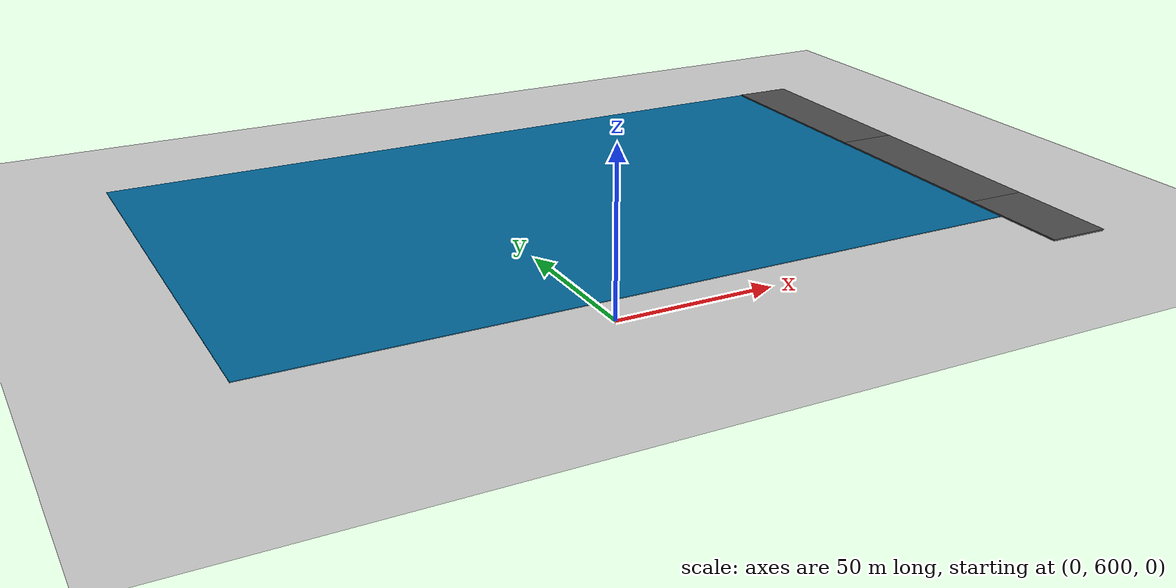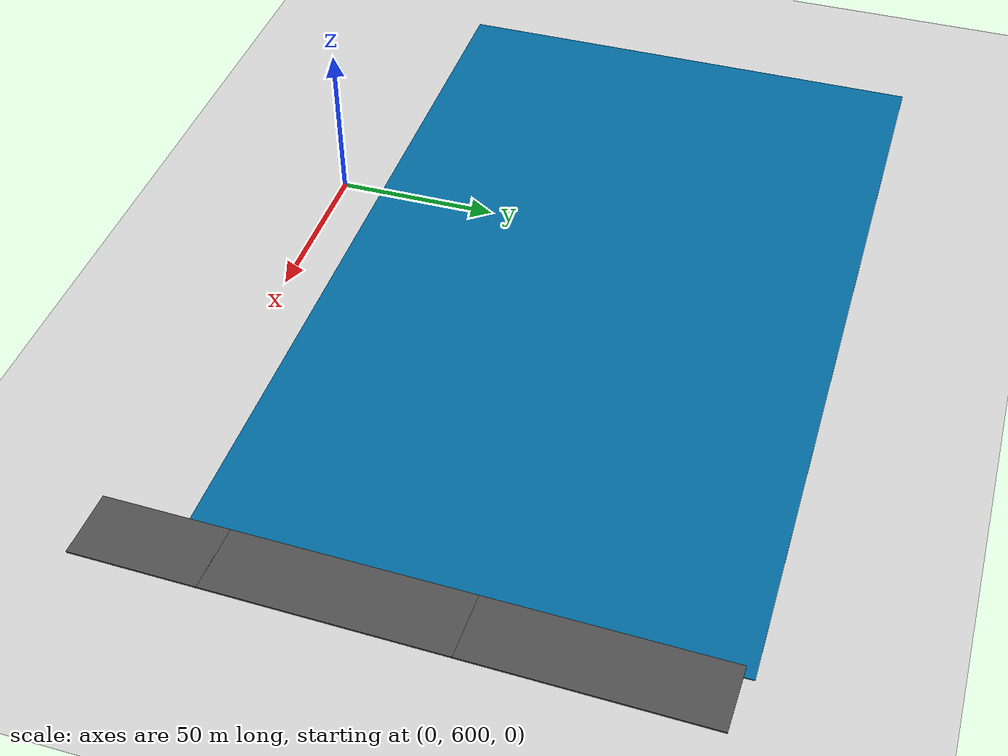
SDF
<sdf version="1.7">
 <world name="default">
  <light name="sun" type="directional">
   <pose>0 0 10 0 -0 0</pose>
   <diffuse>0.8 0.8 0.8 1</diffuse>
   <specular>0.2 0.2 0.2 1</specular>
   <attenuation>
    <range>1000</range>
    <constant>0.9</constant>
    <linear>0.01</linear>
    <quadratic>0.001</quadratic>
   </attenuation>
   <direction>-0.5 0.1 -0.9</direction>
   <spot><inner_angle>0</inner_angle><outer_angle>0</outer_angle><falloff>0</falloff></spot>
  </light>
  <model name="ground_plane">
   <static>1</static>
   <link name="link">
    <collision name="collision">
     <geometry><plane><normal>0 0 1</normal><size>100 100</size></plane></geometry>
     <surface><friction><ode><mu>100</mu><mu2>50</mu2></ode></friction></surface>
    </collision>
    <visual name="visual">
     <cast_shadows>0</cast_shadows>
     <geometry><plane><normal>0 0 1</normal><size>100 100</size></plane></geometry>
     <material>
      <script><uri>file://media/materials/scripts/gazebo.material</uri><name>Gazebo/Grey</name></script>
     </material>
    </visual>
   </link>
  </model>
  <gravity>0 0 -9.8</gravity>
  <magnetic_field>6e-06 2.3e-05 -4.2e-05</magnetic_field>
  <atmosphere type="adiabatic"/>
  <physics type="ode">
   <max_step_size>0.001</max_step_size>
   <real_time_factor>1</real_time_factor>
   <real_time_update_rate>1000</real_time_update_rate>
  </physics>
  <scene><ambient>0.4 0.4 0.4 1</ambient><background>0.7 0.7 0.7 1</background><shadows>1</shadows></scene>
  <audio><device>default</device></audio>
  <spherical_coordinates>
   <surface_model>EARTH_WGS84</surface_model>
   <latitude_deg>0</latitude_deg>
   <longitude_deg>0</longitude_deg>
   <elevation>0</elevation>
   <heading_deg>0</heading_deg>
  </spherical_coordinates>
  <model name="sea_plane_M">
   <link name="link">
    <inertial>
     <mass>5.27875e+06</mass>
     <inertia>
      <ixx>4.66688e+09</ixx>
      <ixy>0</ixy>
      <ixz>0</ixz>
      <iyy>1.84866e+10</iyy>
      <iyz>0</iyz>
      <izz>2.31535e+10</izz>
     </inertia>
    </inertial>
    <visual name="visual">
     <cast_shadows>0</cast_shadows>
     <geometry><box><size>252 155 0.25</size></box></geometry>
     <material>
      <script>
       <uri>model://sea_plane/materials/scripts</uri>
       <uri>model://sea_plane/materials/textures</uri>
       <name>vrc/sea</name>
      </script>
      <shader type="pixel"><normal_map>__default__</normal_map></shader>
      <ambient>0 0.4 0.6 0</ambient>
      <diffuse>0 0.4 0.6 1</diffuse>
      <specular>0.2 0.2 0.2 1</specular>
      <emissive>0 0 0 1</emissive>
     </material>
    </visual>
    <collision name="collision">
     <geometry><box><size>210 375 0.25</size></box></geometry>
     <surface>
      <friction>
       <ode><mu>1</mu><mu2>1</mu2><fdir1>0 0 0</fdir1><slip1>0</slip1><slip2>0</slip2></ode>
       <torsional>
        <coefficient>1</coefficient>
        <patch_radius>0</patch_radius>
        <surface_radius>0</surface_radius>
        <use_patch_radius>1</use_patch_radius>
        <ode><slip>0</slip></ode>
       </torsional>
      </friction>
      <bounce><restitution_coefficient>0</restitution_coefficient><threshold>1e+06</threshold></bounce>
      <contact>
       <collide_without_contact>0</collide_without_contact>
       <collide_without_contact_bitmask>1</collide_without_contact_bitmask>
       <collide_bitmask>1</collide_bitmask>
       <ode>
        <soft_cfm>0</soft_cfm>
        <soft_erp>0.2</soft_erp>
        <kp>1e+13</kp>
        <kd>1</kd>
        <max_vel>0.01</max_vel>
        <min_depth>0</min_depth>
       </ode>
       <bullet>
        <split_impulse>1</split_impulse>
        <split_impulse_penetration_threshold>-0.01</split_impulse_penetration_threshold>
        <soft_cfm>0</soft_cfm>
        <soft_erp>0.2</soft_erp>
        <kp>1e+13</kp>
        <kd>1</kd>
       </bullet>
      </contact>
     </surface>
    </collision>
   </link>
   <static>1</static>
   <pose>24.8355 690.18 0 0 -0 0</pose>
  </model>
  <model name="asphalt_plane">
   <link name="link">
    <pose>0 0 1.015 0 -0 0</pose>
    <inertial>
     <mass>1</mass>
     <inertia><ixx>1</ixx><ixy>0</ixy><ixz>0</ixz><iyy>1</iyy><iyz>0</iyz><izz>1</izz></inertia>
    </inertial>
    <visual name="visual">
     <cast_shadows>0</cast_shadows>
     <geometry><box><size>70 20 0.5</size></box></geometry>
     <material>
      <script>
       <uri>model://asphalt_plane/materials/scripts</uri>
       <uri>model://asphalt_plane/materials/textures</uri>
       <name>vrc/asphalt</name>
      </script>
      <shader type="pixel"><normal_map>__default__</normal_map></shader>
      <ambient>0.5 0.5 0.5 1</ambient>
      <diffuse>0.5 0.5 0.5 1</diffuse>
      <specular>0.2 0.2 0.2 1</specular>
      <emissive>0 0 0 1</emissive>
     </material>
    </visual>
    <collision name="collision">
     <geometry><box><size>70 20 0.5</size></box></geometry>
     <surface>
      <friction>
       <ode><mu>1</mu><mu2>1</mu2><fdir1>0 0 0</fdir1><slip1>0.001</slip1><slip2>1e-05</slip2></ode>
       <torsional>
        <coefficient>1</coefficient>
        <patch_radius>0</patch_radius>
        <surface_radius>0</surface_radius>
        <use_patch_radius>1</use_patch_radius>
        <ode><slip>0</slip></ode>
       </torsional>
      </friction>
      <bounce><restitution_coefficient>0</restitution_coefficient><threshold>1e+06</threshold></bounce>
      <contact>
       <collide_without_contact>0</collide_without_contact>
       <collide_without_contact_bitmask>1</collide_without_contact_bitmask>
       <collide_bitmask>1</collide_bitmask>
       <ode>
        <soft_cfm>0</soft_cfm>
        <soft_erp>0.2</soft_erp>
        <kp>1e+13</kp>
        <kd>1</kd>
        <max_vel>0.01</max_vel>
        <min_depth>0</min_depth>
       </ode>
       <bullet>
        <split_impulse>1</split_impulse>
        <split_impulse_penetration_threshold>-0.01</split_impulse_penetration_threshold>
        <soft_cfm>0</soft_cfm>
        <soft_erp>0.2</soft_erp>
        <kp>1e+13</kp>
        <kd>1</kd>
       </bullet>
      </contact>
     </surface>
    </collision>
   </link>
   <static>1</static>
   <pose>157.387 729.672 0 0 0 -1.5905</pose>
  </model>
  <model name="asphalt_plane_clone">
   <link name="link">
    <pose>0 0 1.015 0 -0 0</pose>
    <inertial>
     <mass>1</mass>
     <inertia><ixx>1</ixx><ixy>0</ixy><ixz>0</ixz><iyy>1</iyy><iyz>0</iyz><izz>1</izz></inertia>
    </inertial>
    <visual name="visual">
     <cast_shadows>0</cast_shadows>
     <geometry><box><size>70 20 0.5</size></box></geometry>
     <material>
      <script>
       <uri>model://asphalt_plane/materials/scripts</uri>
       <uri>model://asphalt_plane/materials/textures</uri>
       <name>vrc/asphalt</name>
      </script>
      <shader type="pixel"><normal_map>__default__</normal_map></shader>
      <ambient>0.5 0.5 0.5 1</ambient>
      <diffuse>0.5 0.5 0.5 1</diffuse>
      <specular>0.2 0.2 0.2 1</specular>
      <emissive>0 0 0 1</emissive>
     </material>
    </visual>
    <collision name="collision">
     <geometry><box><size>70 20 0.5</size></box></geometry>
     <surface>
      <friction>
       <ode><mu>1</mu><mu2>1</mu2><fdir1>0 0 0</fdir1><slip1>0.001</slip1><slip2>1e-05</slip2></ode>
       <torsional>
        <coefficient>1</coefficient>
        <patch_radius>0</patch_radius>
        <surface_radius>0</surface_radius>
        <use_patch_radius>1</use_patch_radius>
        <ode><slip>0</slip></ode>
       </torsional>
      </friction>
      <bounce><restitution_coefficient>0</restitution_coefficient><threshold>1e+06</threshold></bounce>
      <contact>
       <collide_without_contact>0</collide_without_contact>
       <collide_without_contact_bitmask>1</collide_without_contact_bitmask>
       <collide_bitmask>1</collide_bitmask>
       <ode>
        <soft_cfm>0</soft_cfm>
        <soft_erp>0.2</soft_erp>
        <kp>1e+13</kp>
        <kd>1</kd>
        <max_vel>0.01</max_vel>
        <min_depth>0</min_depth>
       </ode>
       <bullet>
        <split_impulse>1</split_impulse>
        <split_impulse_penetration_threshold>-0.01</split_impulse_penetration_threshold>
        <soft_cfm>0</soft_cfm>
        <soft_erp>0.2</soft_erp>
        <kp>1e+13</kp>
        <kd>1</kd>
       </bullet>
      </contact>
     </surface>
    </collision>
   </link>
   <static>1</static>
   <pose>156.008 659.762 0 0 0 -1.5905</pose>
  </model>
  <model name="asphalt_plane_S">
   <link name="link">
    <pose>0 0 1.015 0 0 -1.5905</pose>
    <inertial>
     <mass>1</mass>
     <inertia><ixx>1</ixx><ixy>0</ixy><ixz>0</ixz><iyy>1</iyy><iyz>0</iyz><izz>1</izz></inertia>
    </inertial>
    <visual name="visual">
     <cast_shadows>0</cast_shadows>
     <geometry><box><size>37.75 20 0.5</size></box></geometry>
     <material>
      <script>
       <uri>model://asphalt_plane/materials/scripts</uri>
       <uri>model://asphalt_plane/materials/textures</uri>
       <name>vrc/asphalt</name>
      </script>
      <shader type="pixel"><normal_map>__default__</normal_map></shader>
      <ambient>0.5 0.5 0.5 1</ambient>
      <diffuse>0.5 0.5 0.5 1</diffuse>
      <specular>0.2 0.2 0.2 1</specular>
      <emissive>0 0 0 1</emissive>
     </material>
    </visual>
    <collision name="collision">
     <geometry><box><size>37.5 20 0.5</size></box></geometry>
     <surface>
      <friction>
       <ode><mu>1</mu><mu2>1</mu2><fdir1>0 0 0</fdir1><slip1>0.001</slip1><slip2>1e-05</slip2></ode>
       <torsional>
        <coefficient>1</coefficient>
        <patch_radius>0</patch_radius>
        <surface_radius>0</surface_radius>
        <use_patch_radius>1</use_patch_radius>
        <ode><slip>0</slip></ode>
       </torsional>
      </friction>
      <bounce><restitution_coefficient>0</restitution_coefficient><threshold>1e+06</threshold></bounce>
      <contact>
       <collide_without_contact>0</collide_without_contact>
       <collide_without_contact_bitmask>1</collide_without_contact_bitmask>
       <collide_bitmask>1</collide_bitmask>
       <ode>
        <soft_cfm>0</soft_cfm>
        <soft_erp>0.2</soft_erp>
        <kp>1e+13</kp>
        <kd>1</kd>
        <max_vel>0.01</max_vel>
        <min_depth>0</min_depth>
       </ode>
       <bullet>
        <split_impulse>1</split_impulse>
        <split_impulse_penetration_threshold>-0.01</split_impulse_penetration_threshold>
        <soft_cfm>0</soft_cfm>
        <soft_erp>0.2</soft_erp>
        <kp>1e+13</kp>
        <kd>1</kd>
       </bullet>
      </contact>
     </surface>
    </collision>
   </link>
   <static>1</static>
   <pose>154.951 606.098 0 0 -0 0</pose>
  </model>
 </world>
</sdf>
